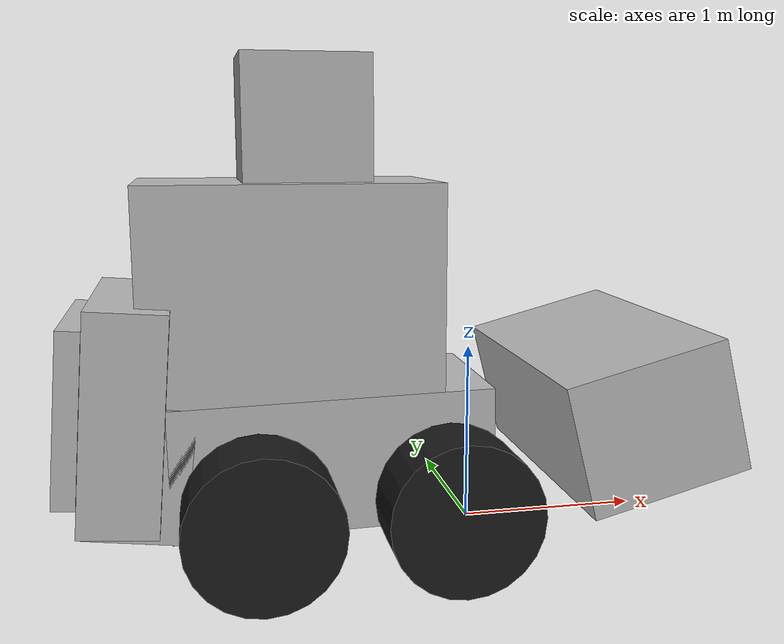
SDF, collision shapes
<?xml version="1.0" encoding="UTF-8"?>
<!-- -*- mode: XML -*- -->
<sdf version='1.4'>
	<model name='Sahar'>
		<link name='body'>
			<pose>0 0 0.125 0 0 0</pose>
			<gravity>1</gravity>
			<velocity_decay>
				<linear>0</linear>
				<angular>0</angular>
			</velocity_decay>
			<self_collide>1</self_collide>
			<inertial>
				<pose>-0.873221 -0.0104657 0.683626 0 -0 0</pose>
				<mass>2646.54</mass>
				<inertia>
					<ixx>818.884</ixx>
					<ixy>0</ixy>
					<ixz>0</ixz>
					<iyy>1500</iyy>
					<iyz>0</iyz>
					<izz>1018.05</izz>
				</inertia>
			</inertial>
			<collision name='body_collision'>
				<pose>-0.82136 0 0.36982 0 -0.02 0</pose>
				<geometry>
					<box>
						<size>1.704 0.889 0.704</size>
					</box>
				</geometry>
			</collision>
			<collision name='body_collision_bb'>
				<pose>-2.14939 0 0.68567 0 0.08047 0</pose>
				<geometry>
					<box>
						<size>0.120 0.952 0.900</size>
					</box>
				</geometry>
			</collision>
			<collision name='body_collision_b'>
				<pose>-1.87754 0 0.671 0 0.08047 0</pose>
				<geometry>
					<box>
						<size>0.4 1.182 1.121</size>
					</box>
				</geometry>
			</collision>
			<collision name='body_collision_bd'>
				<pose>-1.81524 0 0.37981 0 0.1318 0</pose>
				<geometry>
					<box>
						<size>0.511 0.889 0.704</size>
					</box>
				</geometry>
			</collision>
			<visual name='body_visual'>
				<pose>0 0 0 0 0 0</pose>
				<geometry>
					<mesh>
						<scale>1 1 1</scale>
						<uri>model://bobcat_static_arm/meshes/body.dae</uri>
					</mesh>
				</geometry>
			</visual>
			<collision name='body_collision_cabin'>
				<pose>-1.0253 0 1.24 0 0 0</pose>
				<geometry>
					<box>
						<size>1.557 0.889 1.152</size>
					</box>
				</geometry>
			</collision>
			<collision name='body_collision_top_installation_link'>
				<pose>-0.92913 0 2.04 0 0 0</pose>
				<geometry>
					<box>
						<size>0.663 0.598 0.838</size>
					</box>
				</geometry>
			</collision>
			<collision name='loader_collision'>
				<pose>0.782 0 0.58109 0 -0.25273  0</pose>
				<geometry>
					<box>
						<size>0.879 1.682 0.720</size>
					</box>
				</geometry>
			</collision>
		</link>

		<!--WHEELS-->
		<link name='back_left_wheel'>
			<pose>-1.227 0.47558 0.300 0 0 0</pose>
			<inertial>
				<pose>7.7344e-08 0.19645 1.8868e-07 0 -0 0</pose>
				<mass>333.358</mass>
				<inertia>
					<ixx>17.0765</ixx>
					<ixy>-2.79367e-06</ixy>
					<ixz>-6.68629e-05</ixz>
					<iyy>29.6158</iyy>
					<iyz>-1.33651e-05</iyz>
					<izz>17.0765</izz>
				</inertia>
			</inertial>
			<collision name='back_left_wheel_collision'>
				<pose>0 0.2 0 1.5708 -0 0</pose>
				<geometry>
					<cylinder>
						<length>0.4</length>
						<radius>0.4</radius>
					</cylinder>
				</geometry>
				<surface>
					<contact>
						<ode/>
					</contact>
					<friction>
						<ode>
							<mu>1</mu>
							<mu2>1</mu2>
						</ode>
					</friction>
				</surface>
			</collision>
			<visual name='back_left_wheel_visual'>
				<pose>0 0 0 0 -0 0</pose>
				<geometry>
					<mesh>
						<uri>model://bobcat_static_arm/meshes/back_left_wheel.stl</uri>
					</mesh>
				</geometry>
				<material>
					<ambient>0 0 0 1</ambient>
					<diffuse>0.1 0.1 0.1 1</diffuse>
					<specular>0.5 0.5 0.5 1</specular>
					<emissive>0.05 0.05 0.05 1</emissive>
				</material>
			</visual>
			<gravity>1</gravity>
			<velocity_decay>
				<linear>0</linear>
				<angular>0</angular>
			</velocity_decay>
			<self_collide>0</self_collide>
		</link>
		<joint name='back_left_wheel_joint' type='revolute'>
			<child>back_left_wheel</child>
			<parent>body</parent>
			<axis>
				<xyz>0 1 0</xyz>
				<dynamics/>
			</axis>
		</joint>
		<link name='back_right_wheel'>
			<pose>-1.227 -0.47558 0.300 0 0 0</pose>
			<inertial>
				<pose>-1.4894e-07 -0.19645 1.3751e-07 0 -0 0</pose>
				<mass>333.36</mass>
				<inertia>
					<ixx>17.0765</ixx>
					<ixy>-1.87699e-05</ixy>
					<ixz>1.23277e-05</ixz>
					<iyy>29.6158</iyy>
					<iyz>3.1578e-05</iyz>
					<izz>17.0765</izz>
				</inertia>
			</inertial>
			<collision name='back_right_wheel_collision'>
				<pose>0 -0.2 0 1.5708 -0 0</pose>
				<geometry>
					<cylinder>
						<length>0.4</length>
						<radius>0.4</radius>
					</cylinder>
				</geometry>
				<surface>
					<contact>
						<ode/>
					</contact>
					<friction>
						<ode>
							<mu>1</mu>
							<mu2>1</mu2>
						</ode>
					</friction>
				</surface>
			</collision>
			<visual name='back_right_wheel_visual'>
				<pose>0 0 0 0 -0 0</pose>
				<geometry>
					<mesh>
						<scale>1 1 1</scale>
						<uri>model://bobcat_static_arm/meshes/back_right_wheel.stl</uri>
					</mesh>
				</geometry>
				<material>
					<ambient>0 0 0 1</ambient>
					<diffuse>0.1 0.1 0.1 1</diffuse>
					<specular>0.5 0.5 0.5 1</specular>
					<emissive>0.05 0.05 0.05 1</emissive>
				</material>
			</visual>
			<gravity>1</gravity>
			<velocity_decay>
				<linear>0</linear>
				<angular>0</angular>
			</velocity_decay>
			<self_collide>1</self_collide>
		</link>
		<joint name='back_right_wheel_joint' type='revolute'>
			<child>back_right_wheel</child>
			<parent>body</parent>
			<axis>
				<xyz>0 1 0</xyz>
				<dynamics/>
			</axis>
		</joint>
		<link name='front_left_wheel'>
			<pose>-0.22722 0.47558 0.300 0 0 0</pose>
			<inertial>
				<pose>2.0502e-07 0.19645 -3.6566e-09 0 -0 0</pose>
				<mass>333.358</mass>
				<inertia>
					<ixx>17.0765</ixx>
					<ixy>-4.02019e-05</ixy>
					<ixz>7.57982e-05</ixz>
					<iyy>29.6158</iyy>
					<iyz>-6.64195e-06</iyz>
					<izz>17.0765</izz>
				</inertia>
			</inertial>
			<collision name='front_left_wheel_collision'>
				<pose>0 0.2 0 1.5708 -0 0</pose>
				<geometry>
					<cylinder>
						<length>0.4</length>
						<radius>0.4</radius>
					</cylinder>
				</geometry>
				<surface>
					<contact>
						<ode/>
					</contact>
					<friction>
						<ode>
							<mu>1</mu>
							<mu2>1</mu2>
						</ode>
					</friction>
				</surface>
			</collision>
			<visual name='front_left_wheel_visual'>
				<pose>0 0 0 0 -0 0</pose>
				<geometry>
					<mesh>
						<scale>1 1 1</scale>
						<uri>model://bobcat_static_arm/meshes/front_left_wheel.stl</uri>
					</mesh>
				</geometry>
				<material>
					<ambient>0 0 0 1</ambient>
					<diffuse>0.1 0.1 0.1 1</diffuse>
					<specular>0.5 0.5 0.5 1</specular>
					<emissive>0.05 0.05 0.05 1</emissive>
				</material>
			</visual>
			<gravity>1</gravity>
			<velocity_decay>
				<linear>0</linear>
				<angular>0</angular>
			</velocity_decay>
			<self_collide>1</self_collide>
		</link>
		<joint name='front_left_wheel_joint' type='revolute'>
			<child>front_left_wheel</child>
			<parent>body</parent>
			<axis>
				<xyz>0 1 0</xyz>
				<dynamics/>
			</axis>
		</joint>
		<link name='front_right_wheel'>
			<pose>-0.22722 -0.47558 0.300 0 0 0</pose>
			<inertial>
				<pose>-2.0519e-07 -0.19645 -4.3198e-09 0 -0 0</pose>
				<mass>333.358</mass>
				<inertia>
					<ixx>17.0765</ixx>
					<ixy>-3.66954e-05</ixy>
					<ixz>-7.5494e-05</ixz>
					<iyy>29.6158</iyy>
					<iyz>1.22098e-05</iyz>
					<izz>17.0765</izz>
				</inertia>
			</inertial>
			<collision name='front_right_wheel_collision'>
				<pose>0 -0.2 0 1.5708 -0 0</pose>
				<geometry>
					<cylinder>
						<length>0.4</length>
						<radius>0.4</radius>
					</cylinder>
				</geometry>
				<surface>
					<contact>
						<ode/>
					</contact>
					<friction>
						<ode>
							<mu>1</mu>
							<mu2>1</mu2>
						</ode>
					</friction>
				</surface>
			</collision>
			<visual name='front_right_wheel_visual'>
				<pose>0 0 0 0 -0 0</pose>
				<geometry>
					<mesh>
						<scale>1 1 1</scale>
						<uri>model://bobcat_static_arm/meshes/front_right_wheel.stl</uri>
					</mesh>
				</geometry>
				<material>
					<ambient>0 0 0 1</ambient>
					<diffuse>0.1 0.1 0.1 1</diffuse>
					<specular>0.5 0.5 0.5 1</specular>
					<emissive>0.05 0.05 0.05 1</emissive>
				</material>
			</visual>
			<gravity>1</gravity>
			<velocity_decay>
				<linear>0</linear>
				<angular>0</angular>
			</velocity_decay>
			<self_collide>1</self_collide>
		</link>
		<joint name='front_right_wheel_joint' type='revolute'>
			<child>front_right_wheel</child>
			<parent>body</parent>
			<axis>
				<xyz>0 1 0</xyz>
				<dynamics/>
			</axis>
		</joint>
		<plugin name="bobcat_drive_control" filename="libbobcat_drive_plugin.so">
		      <IP>127.0.0.1</IP>
		      <PortUDPLP>4660</PortUDPLP>
      		      <PortUDPRP>5355</PortUDPRP>
    		</plugin>

		<plugin name="joint_state_publisher" filename="libgazebo_ros_joint_state_publisher.so">
			<robotNamespace>/Sahar</robotNamespace>
			<jointName>back_left_wheel_joint, back_right_wheel_joint, front_left_wheel_joint, front_right_wheel_joint</jointName>
			<updateRate>50.0</updateRate>
			<alwaysOn>true</alwaysOn>
		</plugin>
	</model>
</sdf>
